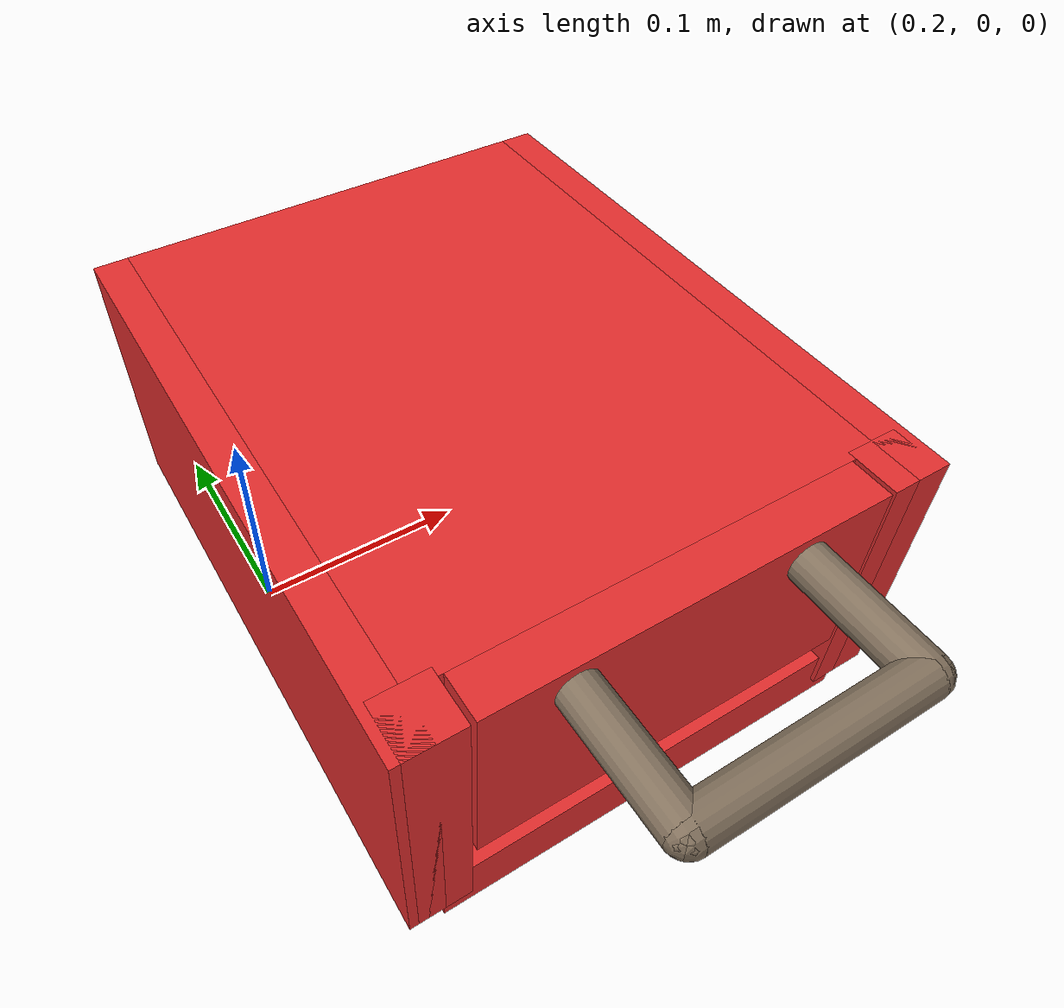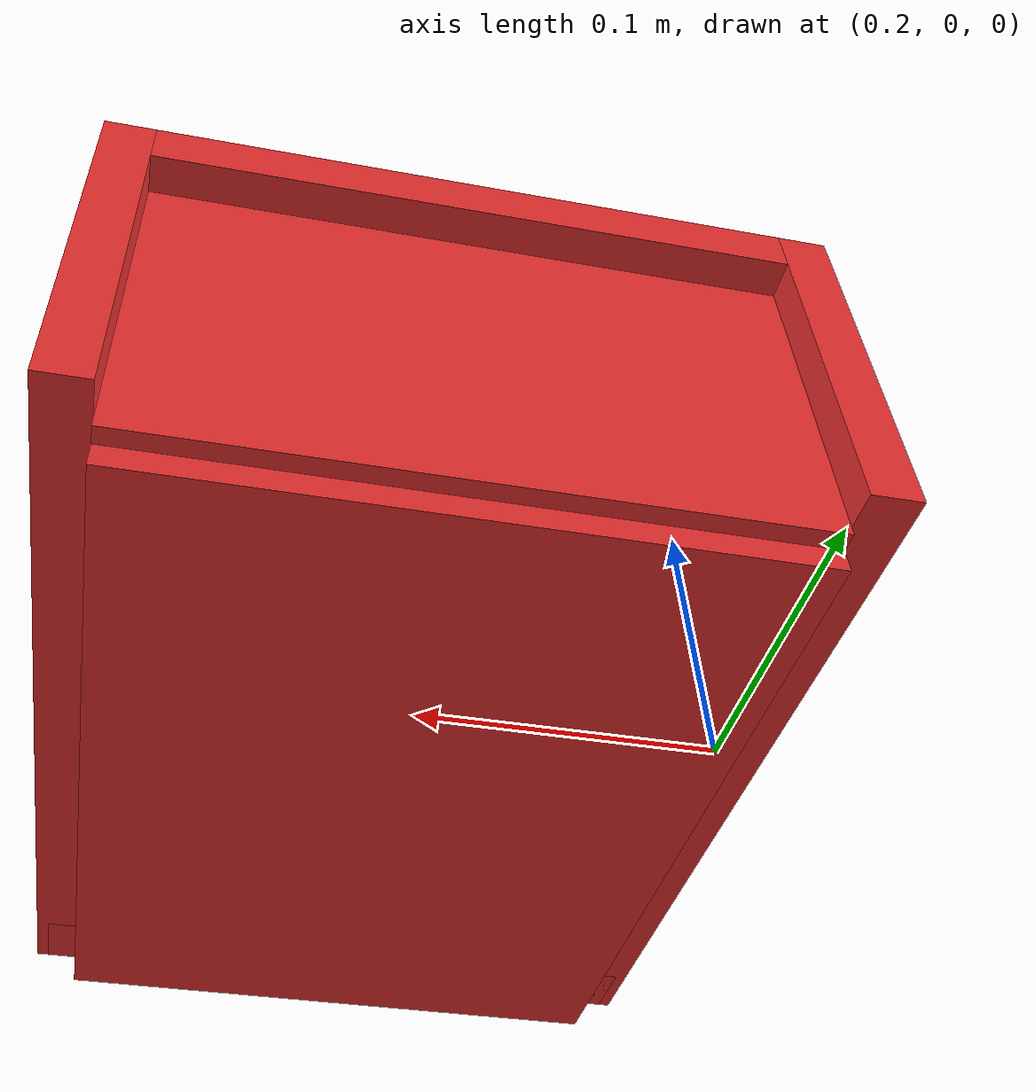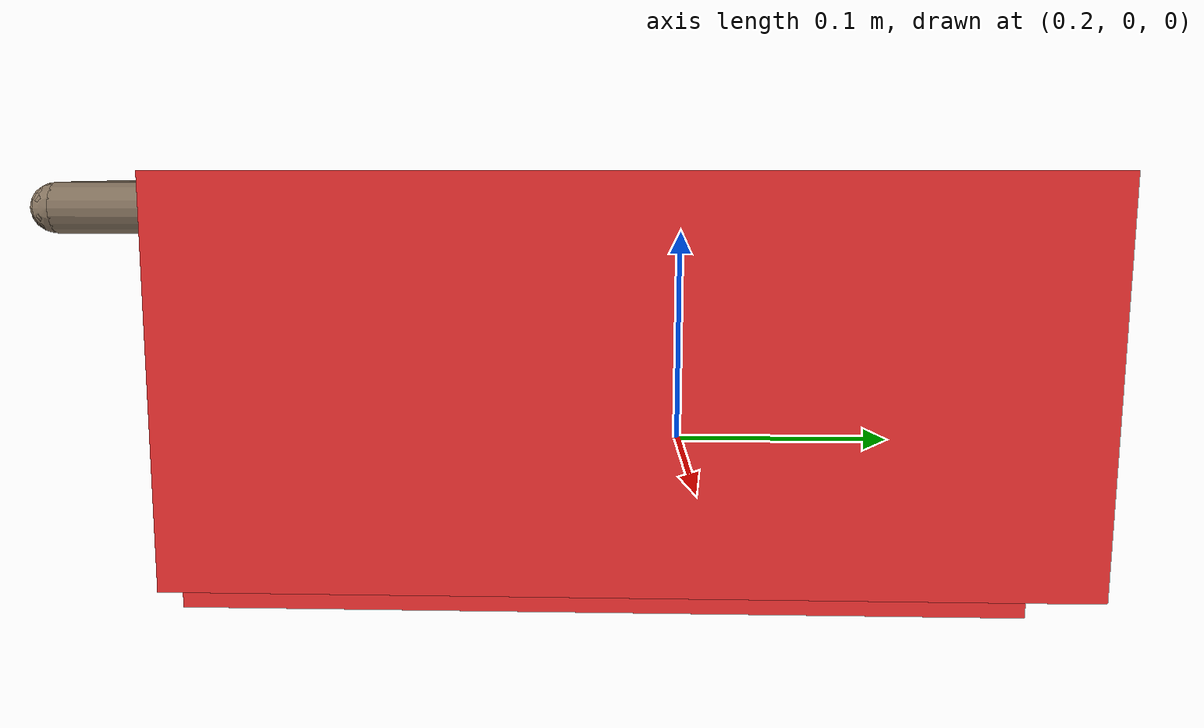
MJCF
<?xml version="1.0" encoding="utf-8"?>
<mujoco model="cabinet">
 <asset>
    <material name="MatRedWood"
              rgba="0.89 0.18 0.18 1"
              specular="1"
              shininess="1"/>
    <material name="MatLightWood"
              rgba="0.52 0.45 0.37 1"
              specular="0.3"
              shininess="0.2"/>
  </asset>
  <worldbody>
      <body>
        <body name="object" pos="0.3 0 0">
      <body name="base" pos="0 0 0" quat="1 0 0 0">

            <!-- These geoms are the left and right walls of the drawer. -->

            <!-- shifted and made longer (-0.063) -->
            <geom name="drawer_left_wall" material="MatRedWood" pos="-0.11 -0.0315 0.065" size="0.008 0.1435 0.064" group="0" type="box" mass="0.05"/>
            <geom name="drawer_right_wall" material="MatRedWood" pos="0.11 -0.0315 0.065" size="0.008 0.1435 0.064" group="0" type="box" mass="0.05"/>

            <!-- original -->

            <!-- Back wall of drawer -->
            <geom name="drawer_back_wall" material="MatRedWood" pos="0 0.092 0.062" size="0.102 0.008 0.064" group="0" type="box" mass="0.05"/>

            <!-- Bottom surface of drawer -->

            <!-- we want to shift in y by -0.063 total, while also keeping the bottom fully covered, so we
                 add (0.063 / 2) to half-size and also shift in y position by (0.063 / 2) -->
            <geom name="drawer_bottom_surface" material="MatRedWood" pos="0 -0.0395 0.004" size="0.102 0.1335 0.014" group="0" type="box" mass="0.05"/>

            <!-- original -->

            <!-- Top surface of drawer -->

            <!-- we want to shift in y by -0.063 total, while also keeping the top fully covered, so we
                 add (0.063 / 2) to half-size and also shift in y position by (0.063 / 2) -->
            <geom name="drawer_top_surface" material="MatRedWood" pos="0 -0.0215 0.121" size="0.102 0.1335 0.008" group="0" type="box" mass="0.05"/>

            <!-- original -->

            <!-- These geoms are symmetric tall boxes that form the cavity that should be filled by the drawer front (with handle). -->

            <!-- shifted by -0.063 -->
            <geom name="drawer_cavity_1" material="MatRedWood" pos="-0.102 -0.163 0.065" size="0.012 0.012 0.064" group="0" type="box" mass="0.05"/>
            <geom name="drawer_cavity_2" material="MatRedWood" pos="0.102 -0.163 0.065" size="0.012 0.012 0.064" group="0" type="box" mass="0.05"/>

            <!-- original -->

        <body name="drawer_link" pos="0 -0.01 0.076">
              <inertial pos="0 0 0.35" quat="0.5 0.5 0.5 0.5" mass="7.85398" diaginertia="0.923301 0.764585 0.168533" />

          <!-- NOTE: had to modify the joint range from BUDS since it was too small (older versions of mujoco did not enforce joint limit) -->
          <joint type="slide" range="-1.0 0" axis="0 1 0"
             name="goal_slidey" pos="0 0 0" damping="100.0"/>

                <!-- This one makes the front drawer piece go out further -->
                <geom name="drawer_tray_1" material="MatRedWood" pos="0 -0.155 0.007" size="0.088 0.010 0.046" group="0" type="box" mass="0.04"/>

                <geom name="drawer_tray_2" material="MatRedWood" pos="0 0.065 0.008" size="0.095 0.008 0.028" group="0" type="box" mass="0.04"/>

                <!-- This one makes one of the edges shorter and longer -->
                <geom name="drawer_tray_3" material="MatRedWood" pos="-0.072 -0.042 -0.015" size="0.008 0.114 0.008" group="0" type="box" mass="0.04"/>

                <!-- This one makes one of the edges shorter and longer -->
                <geom name="drawer_tray_4" material="MatRedWood" pos="0.072 -0.042 -0.015" size="0.008 0.114 0.008" group="0" type="box" mass="0.04"/>

                <!-- This one makes the bottom geom much longer -->
                <geom name="drawer_bottom" material="MatRedWood" pos="0 -0.04 -0.03" size="0.08 0.12 0.008" group="0" type="box" mass="0.04"/>

                <!-- This one pulls the handle out further -->
                <geom name="drawer_handle_1" material="MatLightWood" quat="0.7071055 0.7071081 0 0" pos="-0.05 -0.19 0.04" size="0.009 0.03" group="0" type="capsule" mass="0.06"/>
                <geom name="drawer_handle_2" material="MatLightWood" quat="0.7071055 0 0.7071081 0" pos="0 -0.22 0.04" size="0.009 0.05" group="0" type="capsule" mass="0.06"/>
                <geom name="drawer_handle_3" material="MatLightWood" quat="0.7071055 0.7071081 0 0" pos="0.05 -0.19 0.04" size="0.009 0.03" group="0" type="capsule" mass="0.06"/>

        </body>
          </body>
        </body>
        <site name="bottom_site" pos="0 0 -0.3" rgba="0 0 0 0" size="0.005"/>
        <site name="top_site" pos="0 0 0.3" rgba="0 0 0 0" size="0.005"/>
        <site name="horizontal_radius_site" pos="0.3 0 0" rgba="0 0 0 0" size="0.1"/>
      </body>
    </worldbody>
</mujoco>
